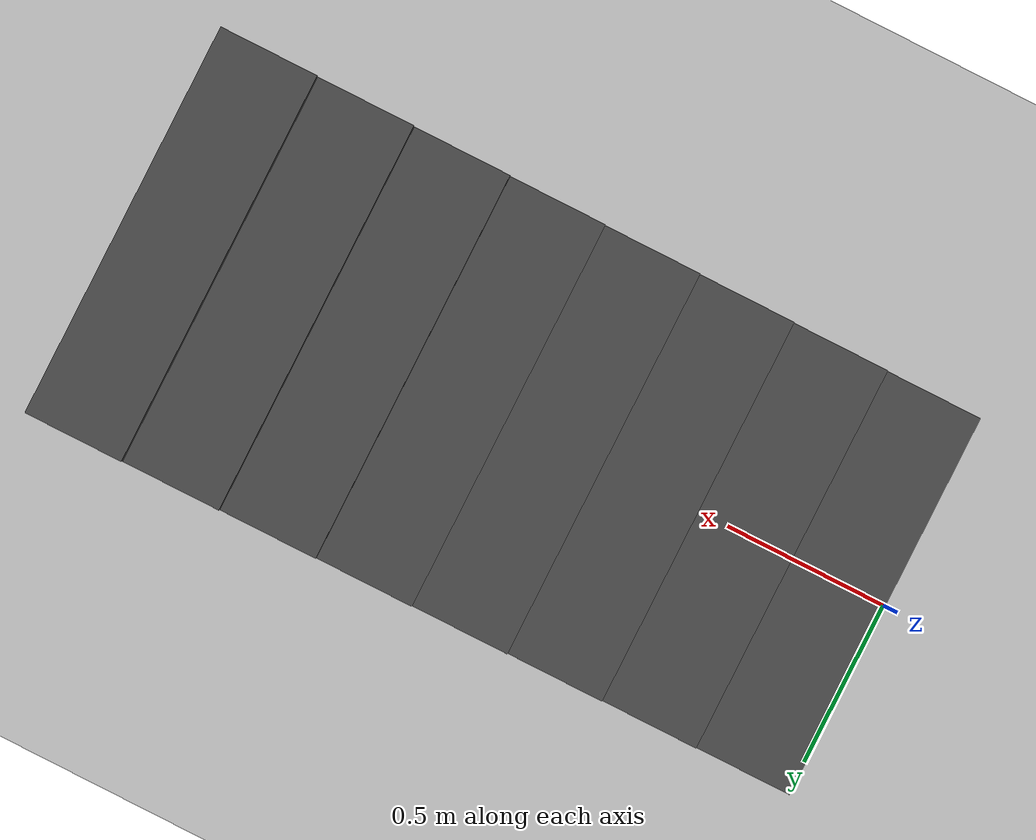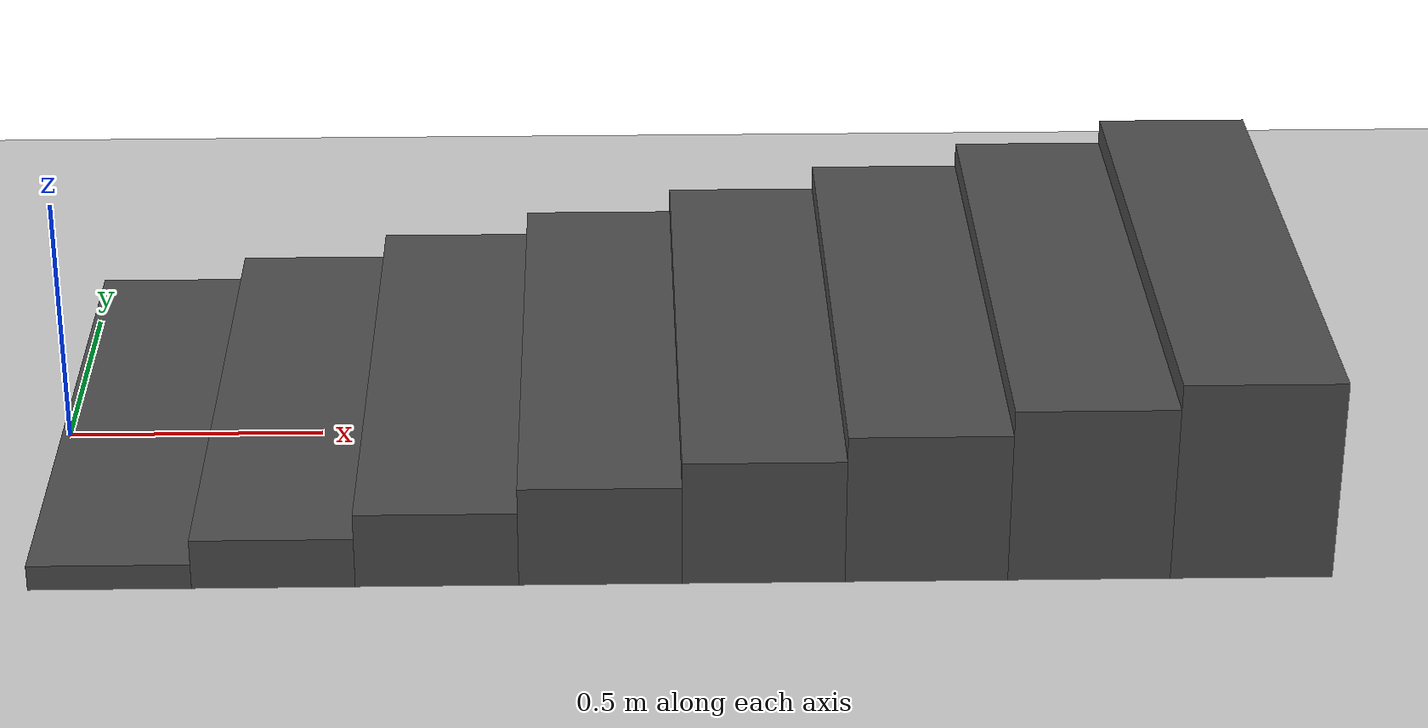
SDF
<?xml version="1.0" ?>
<!-- 由 omni_world.py 自动生成: scene=stairs seed=None -->
<sdf version="1.5">
  <world name="stairs">
    <physics type="ode">
      <type>world</type>
      <max_step_size>0.001</max_step_size>
      <real_time_update_rate>1000</real_time_update_rate>
      <iters>500</iters>
    </physics>
    <include><uri>model://sun</uri></include>
    <include><uri>model://ground_plane</uri></include>
    <model name="stair_0">
      <static>true</static>
      <pose>0.150 0.000 0.025 0.0000 0.0000 0.0000</pose>
      <link name="link">
        <collision name="collision">
          <geometry><box><size>0.300 1.200 0.050</size></box></geometry>
          <surface><friction><ode><mu>1.0</mu><mu2>1.0</mu2></ode></friction></surface>
        </collision>
        <visual name="visual">
          <geometry><box><size>0.300 1.200 0.050</size></box></geometry>
          <material><script><uri>file://media/materials/scripts/gazebo.material</uri>
            <name>Gazebo/DarkGrey</name></script></material>
        </visual>
      </link>
    </model>
    <model name="stair_1">
      <static>true</static>
      <pose>0.450 0.000 0.050 0.0000 0.0000 0.0000</pose>
      <link name="link">
        <collision name="collision">
          <geometry><box><size>0.300 1.200 0.100</size></box></geometry>
          <surface><friction><ode><mu>1.0</mu><mu2>1.0</mu2></ode></friction></surface>
        </collision>
        <visual name="visual">
          <geometry><box><size>0.300 1.200 0.100</size></box></geometry>
          <material><script><uri>file://media/materials/scripts/gazebo.material</uri>
            <name>Gazebo/DarkGrey</name></script></material>
        </visual>
      </link>
    </model>
    <model name="stair_2">
      <static>true</static>
      <pose>0.750 0.000 0.075 0.0000 0.0000 0.0000</pose>
      <link name="link">
        <collision name="collision">
          <geometry><box><size>0.300 1.200 0.150</size></box></geometry>
          <surface><friction><ode><mu>1.0</mu><mu2>1.0</mu2></ode></friction></surface>
        </collision>
        <visual name="visual">
          <geometry><box><size>0.300 1.200 0.150</size></box></geometry>
          <material><script><uri>file://media/materials/scripts/gazebo.material</uri>
            <name>Gazebo/DarkGrey</name></script></material>
        </visual>
      </link>
    </model>
    <model name="stair_3">
      <static>true</static>
      <pose>1.050 0.000 0.100 0.0000 0.0000 0.0000</pose>
      <link name="link">
        <collision name="collision">
          <geometry><box><size>0.300 1.200 0.200</size></box></geometry>
          <surface><friction><ode><mu>1.0</mu><mu2>1.0</mu2></ode></friction></surface>
        </collision>
        <visual name="visual">
          <geometry><box><size>0.300 1.200 0.200</size></box></geometry>
          <material><script><uri>file://media/materials/scripts/gazebo.material</uri>
            <name>Gazebo/DarkGrey</name></script></material>
        </visual>
      </link>
    </model>
    <model name="stair_4">
      <static>true</static>
      <pose>1.350 0.000 0.125 0.0000 0.0000 0.0000</pose>
      <link name="link">
        <collision name="collision">
          <geometry><box><size>0.300 1.200 0.250</size></box></geometry>
          <surface><friction><ode><mu>1.0</mu><mu2>1.0</mu2></ode></friction></surface>
        </collision>
        <visual name="visual">
          <geometry><box><size>0.300 1.200 0.250</size></box></geometry>
          <material><script><uri>file://media/materials/scripts/gazebo.material</uri>
            <name>Gazebo/DarkGrey</name></script></material>
        </visual>
      </link>
    </model>
    <model name="stair_5">
      <static>true</static>
      <pose>1.650 0.000 0.150 0.0000 0.0000 0.0000</pose>
      <link name="link">
        <collision name="collision">
          <geometry><box><size>0.300 1.200 0.300</size></box></geometry>
          <surface><friction><ode><mu>1.0</mu><mu2>1.0</mu2></ode></friction></surface>
        </collision>
        <visual name="visual">
          <geometry><box><size>0.300 1.200 0.300</size></box></geometry>
          <material><script><uri>file://media/materials/scripts/gazebo.material</uri>
            <name>Gazebo/DarkGrey</name></script></material>
        </visual>
      </link>
    </model>
    <model name="stair_6">
      <static>true</static>
      <pose>1.950 0.000 0.175 0.0000 0.0000 0.0000</pose>
      <link name="link">
        <collision name="collision">
          <geometry><box><size>0.300 1.200 0.350</size></box></geometry>
          <surface><friction><ode><mu>1.0</mu><mu2>1.0</mu2></ode></friction></surface>
        </collision>
        <visual name="visual">
          <geometry><box><size>0.300 1.200 0.350</size></box></geometry>
          <material><script><uri>file://media/materials/scripts/gazebo.material</uri>
            <name>Gazebo/DarkGrey</name></script></material>
        </visual>
      </link>
    </model>
    <model name="stair_7">
      <static>true</static>
      <pose>2.250 0.000 0.200 0.0000 0.0000 0.0000</pose>
      <link name="link">
        <collision name="collision">
          <geometry><box><size>0.300 1.200 0.400</size></box></geometry>
          <surface><friction><ode><mu>1.0</mu><mu2>1.0</mu2></ode></friction></surface>
        </collision>
        <visual name="visual">
          <geometry><box><size>0.300 1.200 0.400</size></box></geometry>
          <material><script><uri>file://media/materials/scripts/gazebo.material</uri>
            <name>Gazebo/DarkGrey</name></script></material>
        </visual>
      </link>
    </model>

  </world>
</sdf>
